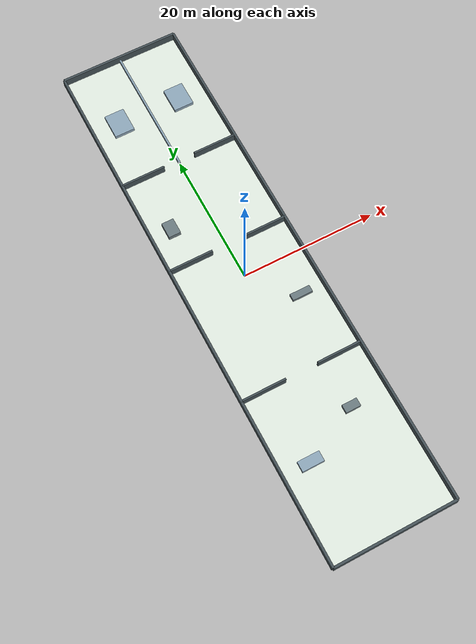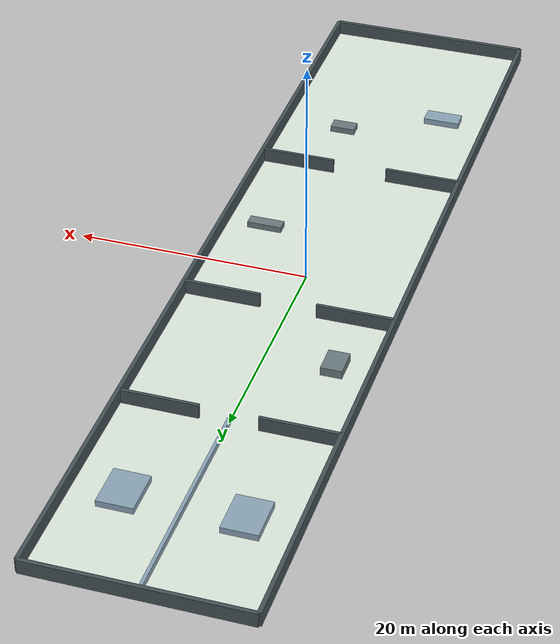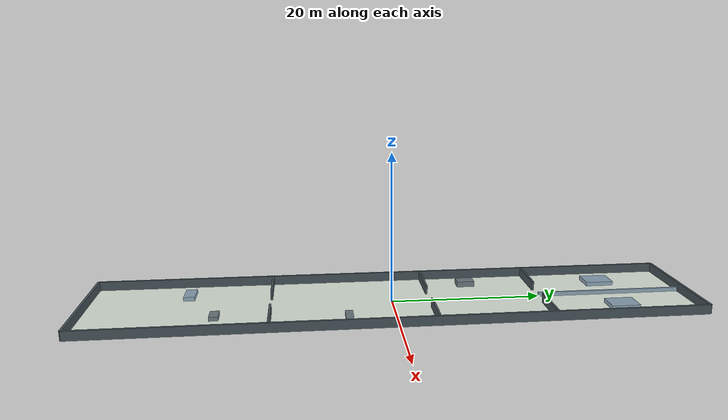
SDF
<?xml version="1.0" ?>
<sdf version="1.6">
  <world name="narrow_lot_house">
    <gravity>0 0 -9.8</gravity>
    <scene>
      <ambient>0.65 0.65 0.65 1</ambient>
      <background>0.78 0.84 0.88 1</background>
    </scene>
    <include>
      <uri>model://sun</uri>
    </include>
    <model name="narrow_lot_house_floor">
      <static>true</static>
      <pose>0.000 0.000 -0.025 0 0 0</pose>
      <link name="floor_link">
        <collision name="floor_collision">
          <geometry>
            <box><size>18.000 80.000 0.050</size></box>
          </geometry>
        </collision>
        <visual name="floor_visual">
          <geometry>
            <box><size>18.000 80.000 0.050</size></box>
          </geometry>
          <material><ambient>0.88 0.92 0.88 1</ambient><diffuse>0.88 0.92 0.88 1</diffuse></material>
        </visual>
      </link>
    </model>
    <model name="outer_north">
      <static>true</static>
      <pose>0.000 40.000 0.625 0 0 0</pose>
      <link name="outer_north_link">
        <collision name="outer_north_collision">
          <geometry>
            <box><size>18.000 0.350 1.250</size></box>
          </geometry>
        </collision>
        <visual name="outer_north_visual">
          <geometry>
            <box><size>18.000 0.350 1.250</size></box>
          </geometry>
          <material><ambient>0.27 0.32 0.34 1</ambient><diffuse>0.27 0.32 0.34 1</diffuse></material>
        </visual>
      </link>
    </model>
    <model name="outer_south">
      <static>true</static>
      <pose>0.000 -40.000 0.625 0 0 0</pose>
      <link name="outer_south_link">
        <collision name="outer_south_collision">
          <geometry>
            <box><size>18.000 0.350 1.250</size></box>
          </geometry>
        </collision>
        <visual name="outer_south_visual">
          <geometry>
            <box><size>18.000 0.350 1.250</size></box>
          </geometry>
          <material><ambient>0.27 0.32 0.34 1</ambient><diffuse>0.27 0.32 0.34 1</diffuse></material>
        </visual>
      </link>
    </model>
    <model name="outer_west">
      <static>true</static>
      <pose>-9.000 0.000 0.625 0 0 0</pose>
      <link name="outer_west_link">
        <collision name="outer_west_collision">
          <geometry>
            <box><size>0.350 80.000 1.250</size></box>
          </geometry>
        </collision>
        <visual name="outer_west_visual">
          <geometry>
            <box><size>0.350 80.000 1.250</size></box>
          </geometry>
          <material><ambient>0.27 0.32 0.34 1</ambient><diffuse>0.27 0.32 0.34 1</diffuse></material>
        </visual>
      </link>
    </model>
    <model name="outer_east">
      <static>true</static>
      <pose>9.000 0.000 0.625 0 0 0</pose>
      <link name="outer_east_link">
        <collision name="outer_east_collision">
          <geometry>
            <box><size>0.350 80.000 1.250</size></box>
          </geometry>
        </collision>
        <visual name="outer_east_visual">
          <geometry>
            <box><size>0.350 80.000 1.250</size></box>
          </geometry>
          <material><ambient>0.27 0.32 0.34 1</ambient><diffuse>0.27 0.32 0.34 1</diffuse></material>
        </visual>
      </link>
    </model>
    <model name="narrow_living_kitchen_wall_w">
      <static>true</static>
      <pose>-5.700 -16.000 0.625 0 0 0</pose>
      <link name="narrow_living_kitchen_wall_w_link">
        <collision name="narrow_living_kitchen_wall_w_collision">
          <geometry>
            <box><size>6.600 0.280 1.250</size></box>
          </geometry>
        </collision>
        <visual name="narrow_living_kitchen_wall_w_visual">
          <geometry>
            <box><size>6.600 0.280 1.250</size></box>
          </geometry>
          <material><ambient>0.27 0.32 0.34 1</ambient><diffuse>0.27 0.32 0.34 1</diffuse></material>
        </visual>
      </link>
    </model>
    <model name="narrow_living_kitchen_wall_e">
      <static>true</static>
      <pose>5.700 -16.000 0.625 0 0 0</pose>
      <link name="narrow_living_kitchen_wall_e_link">
        <collision name="narrow_living_kitchen_wall_e_collision">
          <geometry>
            <box><size>6.600 0.280 1.250</size></box>
          </geometry>
        </collision>
        <visual name="narrow_living_kitchen_wall_e_visual">
          <geometry>
            <box><size>6.600 0.280 1.250</size></box>
          </geometry>
          <material><ambient>0.27 0.32 0.34 1</ambient><diffuse>0.27 0.32 0.34 1</diffuse></material>
        </visual>
      </link>
    </model>
    <model name="narrow_kitchen_bath_wall_w">
      <static>true</static>
      <pose>-5.700 5.000 0.625 0 0 0</pose>
      <link name="narrow_kitchen_bath_wall_w_link">
        <collision name="narrow_kitchen_bath_wall_w_collision">
          <geometry>
            <box><size>6.600 0.280 1.250</size></box>
          </geometry>
        </collision>
        <visual name="narrow_kitchen_bath_wall_w_visual">
          <geometry>
            <box><size>6.600 0.280 1.250</size></box>
          </geometry>
          <material><ambient>0.27 0.32 0.34 1</ambient><diffuse>0.27 0.32 0.34 1</diffuse></material>
        </visual>
      </link>
    </model>
    <model name="narrow_kitchen_bath_wall_e">
      <static>true</static>
      <pose>5.700 5.000 0.625 0 0 0</pose>
      <link name="narrow_kitchen_bath_wall_e_link">
        <collision name="narrow_kitchen_bath_wall_e_collision">
          <geometry>
            <box><size>6.600 0.280 1.250</size></box>
          </geometry>
        </collision>
        <visual name="narrow_kitchen_bath_wall_e_visual">
          <geometry>
            <box><size>6.600 0.280 1.250</size></box>
          </geometry>
          <material><ambient>0.27 0.32 0.34 1</ambient><diffuse>0.27 0.32 0.34 1</diffuse></material>
        </visual>
      </link>
    </model>
    <model name="narrow_private_wall_w">
      <static>true</static>
      <pose>-5.700 20.000 0.625 0 0 0</pose>
      <link name="narrow_private_wall_w_link">
        <collision name="narrow_private_wall_w_collision">
          <geometry>
            <box><size>6.600 0.280 1.250</size></box>
          </geometry>
        </collision>
        <visual name="narrow_private_wall_w_visual">
          <geometry>
            <box><size>6.600 0.280 1.250</size></box>
          </geometry>
          <material><ambient>0.27 0.32 0.34 1</ambient><diffuse>0.27 0.32 0.34 1</diffuse></material>
        </visual>
      </link>
    </model>
    <model name="narrow_private_wall_e">
      <static>true</static>
      <pose>5.700 20.000 0.625 0 0 0</pose>
      <link name="narrow_private_wall_e_link">
        <collision name="narrow_private_wall_e_collision">
          <geometry>
            <box><size>6.600 0.280 1.250</size></box>
          </geometry>
        </collision>
        <visual name="narrow_private_wall_e_visual">
          <geometry>
            <box><size>6.600 0.280 1.250</size></box>
          </geometry>
          <material><ambient>0.27 0.32 0.34 1</ambient><diffuse>0.27 0.32 0.34 1</diffuse></material>
        </visual>
      </link>
    </model>
    <model name="narrow_bedroom_split">
      <static>true</static>
      <pose>0.000 30.000 0.275 0 0 0</pose>
      <link name="narrow_bedroom_split_link">
        <collision name="narrow_bedroom_split_collision">
          <geometry>
            <box><size>0.280 20.000 0.550</size></box>
          </geometry>
        </collision>
        <visual name="narrow_bedroom_split_visual">
          <geometry>
            <box><size>0.280 20.000 0.550</size></box>
          </geometry>
          <material><ambient>0.55 0.65 0.72 1</ambient><diffuse>0.55 0.65 0.72 1</diffuse></material>
        </visual>
      </link>
    </model>
    <model name="narrow_sofa">
      <static>true</static>
      <pose>-4.800 -27.000 0.275 0 0 0</pose>
      <link name="narrow_sofa_link">
        <collision name="narrow_sofa_collision">
          <geometry>
            <box><size>3.200 1.500 0.550</size></box>
          </geometry>
        </collision>
        <visual name="narrow_sofa_visual">
          <geometry>
            <box><size>3.200 1.500 0.550</size></box>
          </geometry>
          <material><ambient>0.55 0.65 0.72 1</ambient><diffuse>0.55 0.65 0.72 1</diffuse></material>
        </visual>
      </link>
    </model>
    <model name="narrow_table">
      <static>true</static>
      <pose>3.500 -23.000 0.275 0 0 0</pose>
      <link name="narrow_table_link">
        <collision name="narrow_table_collision">
          <geometry>
            <box><size>2.200 1.200 0.550</size></box>
          </geometry>
        </collision>
        <visual name="narrow_table_visual">
          <geometry>
            <box><size>2.200 1.200 0.550</size></box>
          </geometry>
          <material><ambient>0.42 0.48 0.50 1</ambient><diffuse>0.42 0.48 0.50 1</diffuse></material>
        </visual>
      </link>
    </model>
    <model name="narrow_counter">
      <static>true</static>
      <pose>5.500 -6.000 0.275 0 0 0</pose>
      <link name="narrow_counter_link">
        <collision name="narrow_counter_collision">
          <geometry>
            <box><size>3.000 1.000 0.550</size></box>
          </geometry>
        </collision>
        <visual name="narrow_counter_visual">
          <geometry>
            <box><size>3.000 1.000 0.550</size></box>
          </geometry>
          <material><ambient>0.42 0.48 0.50 1</ambient><diffuse>0.42 0.48 0.50 1</diffuse></material>
        </visual>
      </link>
    </model>
    <model name="narrow_bath_fixture">
      <static>true</static>
      <pose>-5.800 11.000 0.375 0 0 0</pose>
      <link name="narrow_bath_fixture_link">
        <collision name="narrow_bath_fixture_collision">
          <geometry>
            <box><size>1.800 2.400 0.750</size></box>
          </geometry>
        </collision>
        <visual name="narrow_bath_fixture_visual">
          <geometry>
            <box><size>1.800 2.400 0.750</size></box>
          </geometry>
          <material><ambient>0.42 0.48 0.50 1</ambient><diffuse>0.42 0.48 0.50 1</diffuse></material>
        </visual>
      </link>
    </model>
    <model name="narrow_bed_left">
      <static>true</static>
      <pose>-4.800 30.000 0.275 0 0 0</pose>
      <link name="narrow_bed_left_link">
        <collision name="narrow_bed_left_collision">
          <geometry>
            <box><size>3.000 3.800 0.550</size></box>
          </geometry>
        </collision>
        <visual name="narrow_bed_left_visual">
          <geometry>
            <box><size>3.000 3.800 0.550</size></box>
          </geometry>
          <material><ambient>0.55 0.65 0.72 1</ambient><diffuse>0.55 0.65 0.72 1</diffuse></material>
        </visual>
      </link>
    </model>
    <model name="narrow_bed_right">
      <static>true</static>
      <pose>4.800 30.000 0.275 0 0 0</pose>
      <link name="narrow_bed_right_link">
        <collision name="narrow_bed_right_collision">
          <geometry>
            <box><size>3.000 3.800 0.550</size></box>
          </geometry>
        </collision>
        <visual name="narrow_bed_right_visual">
          <geometry>
            <box><size>3.000 3.800 0.550</size></box>
          </geometry>
          <material><ambient>0.55 0.65 0.72 1</ambient><diffuse>0.55 0.65 0.72 1</diffuse></material>
        </visual>
      </link>
    </model>
  </world>
</sdf>
